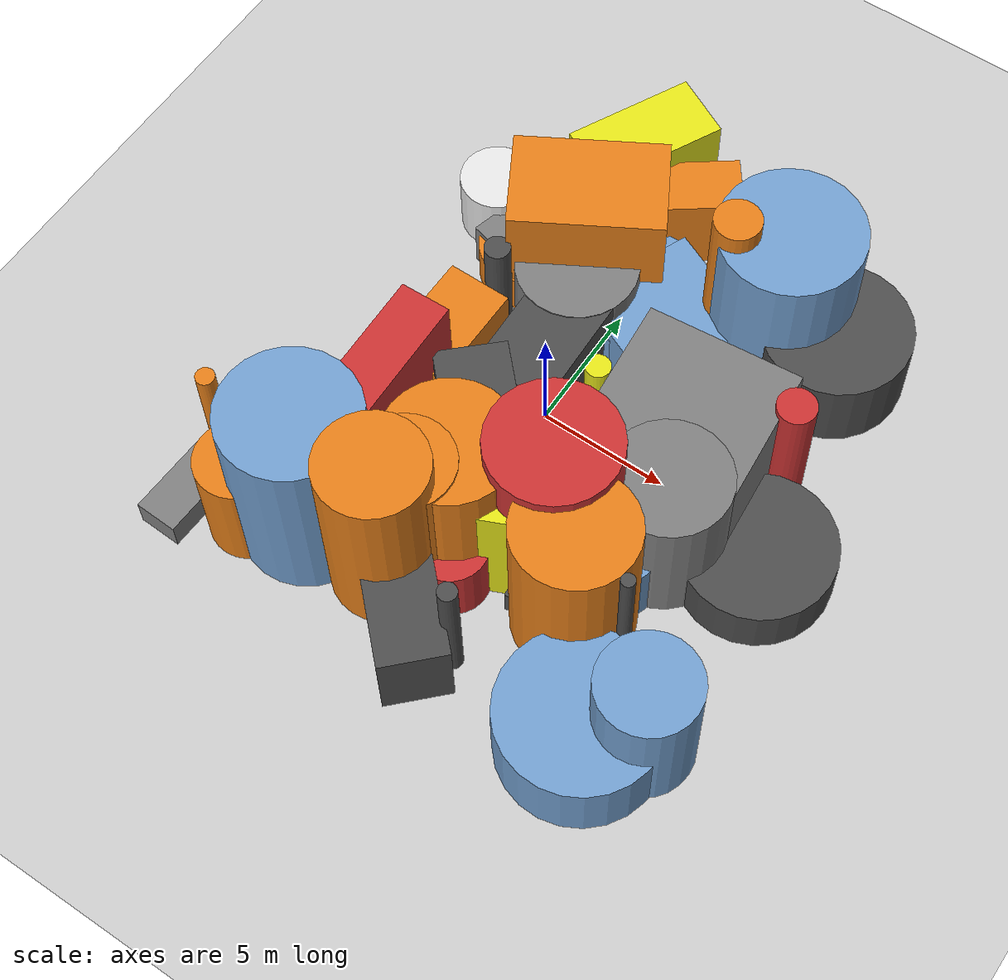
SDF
<?xml version='1.0'?>
<sdf version='1.6'>
  <world name='default'>
    <!-- Sun light -->
    <light name='sun' type='directional'>
      <cast_shadows>1</cast_shadows>
      <pose>0 0 10 0 0 0</pose>
      <diffuse>0.8 0.8 0.8 1</diffuse>
      <specular>0.2 0.2 0.2 1</specular>
      <attenuation>
        <range>1000</range>
        <constant>0.9</constant>
        <linear>0.01</linear>
        <quadratic>0.001</quadratic>
      </attenuation>
      <direction>-0.5 0.1 -0.9</direction>
    </light>

    <!-- Ground plane -->
    <model name='ground_plane'>
      <static>1</static>
      <link name='link'>
        <collision name='collision'>
          <geometry>
            <plane>
              <normal>0 0 1</normal>
              <size>100 100</size>
            </plane>
          </geometry>
          <surface>
            <contact>
              <collide_bitmask>65535</collide_bitmask>
              <ode/>
            </contact>
            <friction>
              <ode>
                <mu>100</mu>
                <mu2>50</mu2>
              </ode>
              <torsional><ode/></torsional>
            </friction>
            <bounce/>
          </surface>
          <max_contacts>10</max_contacts>
        </collision>
        <visual name='visual'>
          <cast_shadows>0</cast_shadows>
          <geometry>
            <plane>
              <normal>0 0 1</normal>
              <size>100 100</size>
            </plane>
          </geometry>
          <material>
            <script>
              <uri>file://media/materials/scripts/gazebo.material</uri>
              <n>Gazebo/Grey</n>
            </script>
          </material>
        </visual>
      </link>
    </model>

    <!-- Environment -->
    <magnetic_field>6e-06 2.3e-05 -4.2e-05</magnetic_field>
    <atmosphere type='adiabatic'/>
    <physics name='default_physics' default='0' type='ode'>
      <gravity>0 0 -9.8</gravity>
      <max_step_size>0.004</max_step_size>
      <real_time_factor>1</real_time_factor>
      <real_time_update_rate>250</real_time_update_rate>
    </physics>
    <scene>
      <ambient>0.4 0.4 0.4 1</ambient>
      <background>0.7 0.7 0.7 1</background>
      <shadows>1</shadows>
    </scene>
    <wind/>
    <spherical_coordinates>
      <surface_model>EARTH_WGS84</surface_model>
      <latitude_deg>0</latitude_deg>
      <longitude_deg>0</longitude_deg>
      <elevation>0</elevation>
      <heading_deg>0</heading_deg>
    </spherical_coordinates>

    <!-- ============ OBSTACLES (50) ============ -->
    <model name='obs_00'>
      <static>1</static>
      <link name='link'>
        <visual name='visual'>
          <geometry>
            <cylinder>
              <radius>0.3540</radius>
              <length>5.4887</length>
            </cylinder>
          </geometry>
          <material>
            <script>
              <n>Gazebo/DarkGrey</n>
              <uri>file://media/materials/scripts/gazebo.material</uri>
            </script>
            <ambient>0.3 0.3 0.3 1</ambient>
          </material>
        </visual>
        <collision name='collision'>
          <geometry>
            <cylinder>
              <radius>0.3540</radius>
              <length>5.4887</length>
            </cylinder>
          </geometry>
          <max_contacts>10</max_contacts>
          <surface>
            <contact><ode/></contact>
            <bounce/>
            <friction>
              <ode><mu>1</mu><mu2>1</mu2></ode>
              <torsional><ode/></torsional>
            </friction>
          </surface>
        </collision>
      </link>
      <pose>2.7887 -9.6706 2.7443 0 0 1.1078</pose>
    </model>

    <model name='obs_01'>
      <static>1</static>
      <link name='link'>
        <visual name='visual'>
          <geometry>
            <box>
              <size>3.9182 3.7257 1.1322</size>
            </box>
          </geometry>
          <material>
            <script>
              <n>Gazebo/DarkGrey</n>
              <uri>file://media/materials/scripts/gazebo.material</uri>
            </script>
            <ambient>0.3 0.3 0.3 1</ambient>
          </material>
        </visual>
        <collision name='collision'>
          <geometry>
            <box>
              <size>3.9182 3.7257 1.1322</size>
            </box>
          </geometry>
          <max_contacts>10</max_contacts>
          <surface>
            <contact><ode/></contact>
            <bounce/>
            <friction>
              <ode><mu>1</mu><mu2>1</mu2></ode>
              <torsional><ode/></torsional>
            </friction>
          </surface>
        </collision>
      </link>
      <pose>4.8389 -5.0150 0.5661 0 0 0.1383</pose>
    </model>

    <model name='obs_02'>
      <static>1</static>
      <link name='link'>
        <visual name='visual'>
          <geometry>
            <cylinder>
              <radius>1.7927</radius>
              <length>6.7865</length>
            </cylinder>
          </geometry>
          <material>
            <script>
              <n>Gazebo/Orange</n>
              <uri>file://media/materials/scripts/gazebo.material</uri>
            </script>
            <ambient>0.9 0.5 0.1 1</ambient>
          </material>
        </visual>
        <collision name='collision'>
          <geometry>
            <cylinder>
              <radius>1.7927</radius>
              <length>6.7865</length>
            </cylinder>
          </geometry>
          <max_contacts>10</max_contacts>
          <surface>
            <contact><ode/></contact>
            <bounce/>
            <friction>
              <ode><mu>1</mu><mu2>1</mu2></ode>
              <torsional><ode/></torsional>
            </friction>
          </surface>
        </collision>
      </link>
      <pose>-0.6686 -7.1544 3.3933 0 0 1.7336</pose>
    </model>

    <model name='obs_03'>
      <static>1</static>
      <link name='link'>
        <visual name='visual'>
          <geometry>
            <cylinder>
              <radius>1.7212</radius>
              <length>2.8461</length>
            </cylinder>
          </geometry>
          <material>
            <script>
              <n>Gazebo/Blue</n>
              <uri>file://media/materials/scripts/gazebo.material</uri>
            </script>
            <ambient>0.447 0.624 0.812 1</ambient>
          </material>
        </visual>
        <collision name='collision'>
          <geometry>
            <cylinder>
              <radius>1.7212</radius>
              <length>2.8461</length>
            </cylinder>
          </geometry>
          <max_contacts>10</max_contacts>
          <surface>
            <contact><ode/></contact>
            <bounce/>
            <friction>
              <ode><mu>1</mu><mu2>1</mu2></ode>
              <torsional><ode/></torsional>
            </friction>
          </surface>
        </collision>
      </link>
      <pose>4.5544 -1.6349 1.4231 0 0 0.9054</pose>
    </model>

    <model name='obs_04'>
      <static>1</static>
      <link name='link'>
        <visual name='visual'>
          <geometry>
            <box>
              <size>5.7004 3.7480 5.5297</size>
            </box>
          </geometry>
          <material>
            <script>
              <n>Gazebo/Orange</n>
              <uri>file://media/materials/scripts/gazebo.material</uri>
            </script>
            <ambient>0.9 0.5 0.1 1</ambient>
          </material>
        </visual>
        <collision name='collision'>
          <geometry>
            <box>
              <size>5.7004 3.7480 5.5297</size>
            </box>
          </geometry>
          <max_contacts>10</max_contacts>
          <surface>
            <contact><ode/></contact>
            <bounce/>
            <friction>
              <ode><mu>1</mu><mu2>1</mu2></ode>
              <torsional><ode/></torsional>
            </friction>
          </surface>
        </collision>
      </link>
      <pose>-2.3190 6.1902 2.7649 0 0 0.5239</pose>
    </model>

    <model name='obs_05'>
      <static>1</static>
      <link name='link'>
        <visual name='visual'>
          <geometry>
            <cylinder>
              <radius>1.9822</radius>
              <length>7.8254</length>
            </cylinder>
          </geometry>
          <material>
            <script>
              <n>Gazebo/Orange</n>
              <uri>file://media/materials/scripts/gazebo.material</uri>
            </script>
            <ambient>0.9 0.5 0.1 1</ambient>
          </material>
        </visual>
        <collision name='collision'>
          <geometry>
            <cylinder>
              <radius>1.9822</radius>
              <length>7.8254</length>
            </cylinder>
          </geometry>
          <max_contacts>10</max_contacts>
          <surface>
            <contact><ode/></contact>
            <bounce/>
            <friction>
              <ode><mu>1</mu><mu2>1</mu2></ode>
              <torsional><ode/></torsional>
            </friction>
          </surface>
        </collision>
      </link>
      <pose>-1.0851 -8.2420 3.9127 0 0 1.0406</pose>
    </model>

    <model name='obs_06'>
      <static>1</static>
      <link name='link'>
        <visual name='visual'>
          <geometry>
            <box>
              <size>3.6816 1.6401 3.2916</size>
            </box>
          </geometry>
          <material>
            <script>
              <n>Gazebo/Yellow</n>
              <uri>file://media/materials/scripts/gazebo.material</uri>
            </script>
            <ambient>0.9 0.9 0.1 1</ambient>
          </material>
        </visual>
        <collision name='collision'>
          <geometry>
            <box>
              <size>3.6816 1.6401 3.2916</size>
            </box>
          </geometry>
          <max_contacts>10</max_contacts>
          <surface>
            <contact><ode/></contact>
            <bounce/>
            <friction>
              <ode><mu>1</mu><mu2>1</mu2></ode>
              <torsional><ode/></torsional>
            </friction>
          </surface>
        </collision>
      </link>
      <pose>-2.7392 -7.3643 1.6458 0 0 1.1138</pose>
    </model>

    <model name='obs_07'>
      <static>1</static>
      <link name='link'>
        <visual name='visual'>
          <geometry>
            <box>
              <size>2.4989 4.1508 2.3941</size>
            </box>
          </geometry>
          <material>
            <script>
              <n>Gazebo/Orange</n>
              <uri>file://media/materials/scripts/gazebo.material</uri>
            </script>
            <ambient>0.9 0.5 0.1 1</ambient>
          </material>
        </visual>
        <collision name='collision'>
          <geometry>
            <box>
              <size>2.4989 4.1508 2.3941</size>
            </box>
          </geometry>
          <max_contacts>10</max_contacts>
          <surface>
            <contact><ode/></contact>
            <bounce/>
            <friction>
              <ode><mu>1</mu><mu2>1</mu2></ode>
              <torsional><ode/></torsional>
            </friction>
          </surface>
        </collision>
      </link>
      <pose>-4.3663 0.1142 1.1971 0 0 3.1347</pose>
    </model>

    <model name='obs_08'>
      <static>1</static>
      <link name='link'>
        <visual name='visual'>
          <geometry>
            <box>
              <size>4.7812 2.2783 5.3743</size>
            </box>
          </geometry>
          <material>
            <script>
              <n>Gazebo/Yellow</n>
              <uri>file://media/materials/scripts/gazebo.material</uri>
            </script>
            <ambient>0.9 0.9 0.1 1</ambient>
          </material>
        </visual>
        <collision name='collision'>
          <geometry>
            <box>
              <size>4.7812 2.2783 5.3743</size>
            </box>
          </geometry>
          <max_contacts>10</max_contacts>
          <surface>
            <contact><ode/></contact>
            <bounce/>
            <friction>
              <ode><mu>1</mu><mu2>1</mu2></ode>
              <torsional><ode/></torsional>
            </friction>
          </surface>
        </collision>
      </link>
      <pose>2.4604 -5.5674 2.6871 0 0 0.4211</pose>
    </model>

    <model name='obs_09'>
      <static>1</static>
      <link name='link'>
        <visual name='visual'>
          <geometry>
            <cylinder>
              <radius>0.4641</radius>
              <length>5.2236</length>
            </cylinder>
          </geometry>
          <material>
            <script>
              <n>Gazebo/Yellow</n>
              <uri>file://media/materials/scripts/gazebo.material</uri>
            </script>
            <ambient>0.9 0.9 0.1 1</ambient>
          </material>
        </visual>
        <collision name='collision'>
          <geometry>
            <cylinder>
              <radius>0.4641</radius>
              <length>5.2236</length>
            </cylinder>
          </geometry>
          <max_contacts>10</max_contacts>
          <surface>
            <contact><ode/></contact>
            <bounce/>
            <friction>
              <ode><mu>1</mu><mu2>1</mu2></ode>
              <torsional><ode/></torsional>
            </friction>
          </surface>
        </collision>
      </link>
      <pose>2.0573 0.1649 2.6118 0 0 0.2240</pose>
    </model>

    <model name='obs_10'>
      <static>1</static>
      <link name='link'>
        <visual name='visual'>
          <geometry>
            <box>
              <size>4.4860 2.4991 3.2883</size>
            </box>
          </geometry>
          <material>
            <script>
              <n>Gazebo/DarkGrey</n>
              <uri>file://media/materials/scripts/gazebo.material</uri>
            </script>
            <ambient>0.3 0.3 0.3 1</ambient>
          </material>
        </visual>
        <collision name='collision'>
          <geometry>
            <box>
              <size>4.4860 2.4991 3.2883</size>
            </box>
          </geometry>
          <max_contacts>10</max_contacts>
          <surface>
            <contact><ode/></contact>
            <bounce/>
            <friction>
              <ode><mu>1</mu><mu2>1</mu2></ode>
              <torsional><ode/></torsional>
            </friction>
          </surface>
        </collision>
      </link>
      <pose>1.0695 -9.9545 1.6441 0 0 2.3653</pose>
    </model>

    <model name='obs_11'>
      <static>1</static>
      <link name='link'>
        <visual name='visual'>
          <geometry>
            <cylinder>
              <radius>0.3629</radius>
              <length>3.7481</length>
            </cylinder>
          </geometry>
          <material>
            <script>
              <n>Gazebo/Orange</n>
              <uri>file://media/materials/scripts/gazebo.material</uri>
            </script>
            <ambient>0.9 0.5 0.1 1</ambient>
          </material>
        </visual>
        <collision name='collision'>
          <geometry>
            <cylinder>
              <radius>0.3629</radius>
              <length>3.7481</length>
            </cylinder>
          </geometry>
          <max_contacts>10</max_contacts>
          <surface>
            <contact><ode/></contact>
            <bounce/>
            <friction>
              <ode><mu>1</mu><mu2>1</mu2></ode>
              <torsional><ode/></torsional>
            </friction>
          </surface>
        </collision>
      </link>
      <pose>-9.4543 -7.0964 1.8740 0 0 1.3928</pose>
    </model>

    <model name='obs_12'>
      <static>1</static>
      <link name='link'>
        <visual name='visual'>
          <geometry>
            <cylinder>
              <radius>2.3911</radius>
              <length>6.6735</length>
            </cylinder>
          </geometry>
          <material>
            <script>
              <n>Gazebo/Orange</n>
              <uri>file://media/materials/scripts/gazebo.material</uri>
            </script>
            <ambient>0.9 0.5 0.1 1</ambient>
          </material>
        </visual>
        <collision name='collision'>
          <geometry>
            <cylinder>
              <radius>2.3911</radius>
              <length>6.6735</length>
            </cylinder>
          </geometry>
          <max_contacts>10</max_contacts>
          <surface>
            <contact><ode/></contact>
            <bounce/>
            <friction>
              <ode><mu>1</mu><mu2>1</mu2></ode>
              <torsional><ode/></torsional>
            </friction>
          </surface>
        </collision>
      </link>
      <pose>0.0623 -5.6734 3.3368 0 0 0.7607</pose>
    </model>

    <model name='obs_13'>
      <static>1</static>
      <link name='link'>
        <visual name='visual'>
          <geometry>
            <cylinder>
              <radius>2.9646</radius>
              <length>2.9721</length>
            </cylinder>
          </geometry>
          <material>
            <script>
              <n>Gazebo/Blue</n>
              <uri>file://media/materials/scripts/gazebo.material</uri>
            </script>
            <ambient>0.447 0.624 0.812 1</ambient>
          </material>
        </visual>
        <collision name='collision'>
          <geometry>
            <cylinder>
              <radius>2.9646</radius>
              <length>2.9721</length>
            </cylinder>
          </geometry>
          <max_contacts>10</max_contacts>
          <surface>
            <contact><ode/></contact>
            <bounce/>
            <friction>
              <ode><mu>1</mu><mu2>1</mu2></ode>
              <torsional><ode/></torsional>
            </friction>
          </surface>
        </collision>
      </link>
      <pose>8.0309 -9.7479 1.4861 0 0 1.9343</pose>
    </model>

    <model name='obs_14'>
      <static>1</static>
      <link name='link'>
        <visual name='visual'>
          <geometry>
            <box>
              <size>2.7049 4.7441 3.3498</size>
            </box>
          </geometry>
          <material>
            <script>
              <n>Gazebo/DarkGrey</n>
              <uri>file://media/materials/scripts/gazebo.material</uri>
            </script>
            <ambient>0.3 0.3 0.3 1</ambient>
          </material>
        </visual>
        <collision name='collision'>
          <geometry>
            <box>
              <size>2.7049 4.7441 3.3498</size>
            </box>
          </geometry>
          <max_contacts>10</max_contacts>
          <surface>
            <contact><ode/></contact>
            <bounce/>
            <friction>
              <ode><mu>1</mu><mu2>1</mu2></ode>
              <torsional><ode/></torsional>
            </friction>
          </surface>
        </collision>
      </link>
      <pose>-1.0744 -2.4482 1.6749 0 0 0.7641</pose>
    </model>

    <model name='obs_15'>
      <static>1</static>
      <link name='link'>
        <visual name='visual'>
          <geometry>
            <box>
              <size>5.0389 2.1750 2.0566</size>
            </box>
          </geometry>
          <material>
            <script>
              <n>Gazebo/Grey</n>
              <uri>file://media/materials/scripts/gazebo.material</uri>
            </script>
            <ambient>0.5 0.5 0.5 1</ambient>
          </material>
        </visual>
        <collision name='collision'>
          <geometry>
            <box>
              <size>5.0389 2.1750 2.0566</size>
            </box>
          </geometry>
          <max_contacts>10</max_contacts>
          <surface>
            <contact><ode/></contact>
            <bounce/>
            <friction>
              <ode><mu>1</mu><mu2>1</mu2></ode>
              <torsional><ode/></torsional>
            </friction>
          </surface>
        </collision>
      </link>
      <pose>-4.3060 6.3701 1.0283 0 0 1.3083</pose>
    </model>

    <model name='obs_16'>
      <static>1</static>
      <link name='link'>
        <visual name='visual'>
          <geometry>
            <box>
              <size>5.6321 5.8013 5.2602</size>
            </box>
          </geometry>
          <material>
            <script>
              <n>Gazebo/Grey</n>
              <uri>file://media/materials/scripts/gazebo.material</uri>
            </script>
            <ambient>0.5 0.5 0.5 1</ambient>
          </material>
        </visual>
        <collision name='collision'>
          <geometry>
            <box>
              <size>5.6321 5.8013 5.2602</size>
            </box>
          </geometry>
          <max_contacts>10</max_contacts>
          <surface>
            <contact><ode/></contact>
            <bounce/>
            <friction>
              <ode><mu>1</mu><mu2>1</mu2></ode>
              <torsional><ode/></torsional>
            </friction>
          </surface>
        </collision>
      </link>
      <pose>5.4313 0.5857 2.6301 0 0 1.6629</pose>
    </model>

    <model name='obs_17'>
      <static>1</static>
      <link name='link'>
        <visual name='visual'>
          <geometry>
            <cylinder>
              <radius>0.8767</radius>
              <length>7.2952</length>
            </cylinder>
          </geometry>
          <material>
            <script>
              <n>Gazebo/Orange</n>
              <uri>file://media/materials/scripts/gazebo.material</uri>
            </script>
            <ambient>0.9 0.5 0.1 1</ambient>
          </material>
        </visual>
        <collision name='collision'>
          <geometry>
            <cylinder>
              <radius>0.8767</radius>
              <length>7.2952</length>
            </cylinder>
          </geometry>
          <max_contacts>10</max_contacts>
          <surface>
            <contact><ode/></contact>
            <bounce/>
            <friction>
              <ode><mu>1</mu><mu2>1</mu2></ode>
              <torsional><ode/></torsional>
            </friction>
          </surface>
        </collision>
      </link>
      <pose>3.4509 6.6480 3.6476 0 0 1.0004</pose>
    </model>

    <model name='obs_18'>
      <static>1</static>
      <link name='link'>
        <visual name='visual'>
          <geometry>
            <cylinder>
              <radius>2.6869</radius>
              <length>6.5273</length>
            </cylinder>
          </geometry>
          <material>
            <script>
              <n>Gazebo/Blue</n>
              <uri>file://media/materials/scripts/gazebo.material</uri>
            </script>
            <ambient>0.447 0.624 0.812 1</ambient>
          </material>
        </visual>
        <collision name='collision'>
          <geometry>
            <cylinder>
              <radius>2.6869</radius>
              <length>6.5273</length>
            </cylinder>
          </geometry>
          <max_contacts>10</max_contacts>
          <surface>
            <contact><ode/></contact>
            <bounce/>
            <friction>
              <ode><mu>1</mu><mu2>1</mu2></ode>
              <torsional><ode/></torsional>
            </friction>
          </surface>
        </collision>
      </link>
      <pose>5.0335 7.7883 3.2637 0 0 0.8567</pose>
    </model>

    <model name='obs_19'>
      <static>1</static>
      <link name='link'>
        <visual name='visual'>
          <geometry>
            <cylinder>
              <radius>2.8034</radius>
              <length>2.0917</length>
            </cylinder>
          </geometry>
          <material>
            <script>
              <n>Gazebo/DarkGrey</n>
              <uri>file://media/materials/scripts/gazebo.material</uri>
            </script>
            <ambient>0.3 0.3 0.3 1</ambient>
          </material>
        </visual>
        <collision name='collision'>
          <geometry>
            <cylinder>
              <radius>2.8034</radius>
              <length>2.0917</length>
            </cylinder>
          </geometry>
          <max_contacts>10</max_contacts>
          <surface>
            <contact><ode/></contact>
            <bounce/>
            <friction>
              <ode><mu>1</mu><mu2>1</mu2></ode>
              <torsional><ode/></torsional>
            </friction>
          </surface>
        </collision>
      </link>
      <pose>9.5211 -1.0894 1.0459 0 0 2.1160</pose>
    </model>

    <model name='obs_20'>
      <static>1</static>
      <link name='link'>
        <visual name='visual'>
          <geometry>
            <cylinder>
              <radius>1.1372</radius>
              <length>1.5217</length>
            </cylinder>
          </geometry>
          <material>
            <script>
              <n>Gazebo/Grey</n>
              <uri>file://media/materials/scripts/gazebo.material</uri>
            </script>
            <ambient>0.5 0.5 0.5 1</ambient>
          </material>
        </visual>
        <collision name='collision'>
          <geometry>
            <cylinder>
              <radius>1.1372</radius>
              <length>1.5217</length>
            </cylinder>
          </geometry>
          <max_contacts>10</max_contacts>
          <surface>
            <contact><ode/></contact>
            <bounce/>
            <friction>
              <ode><mu>1</mu><mu2>1</mu2></ode>
              <torsional><ode/></torsional>
            </friction>
          </surface>
        </collision>
      </link>
      <pose>3.7013 -0.2180 0.7609 0 0 0.8026</pose>
    </model>

    <model name='obs_21'>
      <static>1</static>
      <link name='link'>
        <visual name='visual'>
          <geometry>
            <box>
              <size>2.1078 4.3771 3.4323</size>
            </box>
          </geometry>
          <material>
            <script>
              <n>Gazebo/Orange</n>
              <uri>file://media/materials/scripts/gazebo.material</uri>
            </script>
            <ambient>0.9 0.5 0.1 1</ambient>
          </material>
        </visual>
        <collision name='collision'>
          <geometry>
            <box>
              <size>2.1078 4.3771 3.4323</size>
            </box>
          </geometry>
          <max_contacts>10</max_contacts>
          <surface>
            <contact><ode/></contact>
            <bounce/>
            <friction>
              <ode><mu>1</mu><mu2>1</mu2></ode>
              <torsional><ode/></torsional>
            </friction>
          </surface>
        </collision>
      </link>
      <pose>-0.1962 9.2926 1.7162 0 0 2.2089</pose>
    </model>

    <model name='obs_22'>
      <static>1</static>
      <link name='link'>
        <visual name='visual'>
          <geometry>
            <cylinder>
              <radius>2.7689</radius>
              <length>3.1189</length>
            </cylinder>
          </geometry>
          <material>
            <script>
              <n>Gazebo/DarkGrey</n>
              <uri>file://media/materials/scripts/gazebo.material</uri>
            </script>
            <ambient>0.3 0.3 0.3 1</ambient>
          </material>
        </visual>
        <collision name='collision'>
          <geometry>
            <cylinder>
              <radius>2.7689</radius>
              <length>3.1189</length>
            </cylinder>
          </geometry>
          <max_contacts>10</max_contacts>
          <surface>
            <contact><ode/></contact>
            <bounce/>
            <friction>
              <ode><mu>1</mu><mu2>1</mu2></ode>
              <torsional><ode/></torsional>
            </friction>
          </surface>
        </collision>
      </link>
      <pose>7.5714 7.3351 1.5594 0 0 1.0179</pose>
    </model>

    <model name='obs_23'>
      <static>1</static>
      <link name='link'>
        <visual name='visual'>
          <geometry>
            <box>
              <size>1.9427 5.2009 5.0083</size>
            </box>
          </geometry>
          <material>
            <script>
              <n>Gazebo/Red</n>
              <uri>file://media/materials/scripts/gazebo.material</uri>
            </script>
            <ambient>0.8 0.2 0.2 1</ambient>
          </material>
        </visual>
        <collision name='collision'>
          <geometry>
            <box>
              <size>1.9427 5.2009 5.0083</size>
            </box>
          </geometry>
          <max_contacts>10</max_contacts>
          <surface>
            <contact><ode/></contact>
            <bounce/>
            <friction>
              <ode><mu>1</mu><mu2>1</mu2></ode>
              <torsional><ode/></torsional>
            </friction>
          </surface>
        </collision>
      </link>
      <pose>-4.4466 -3.3550 2.5042 0 0 0.0247</pose>
    </model>

    <model name='obs_24'>
      <static>1</static>
      <link name='link'>
        <visual name='visual'>
          <geometry>
            <cylinder>
              <radius>0.4920</radius>
              <length>4.1708</length>
            </cylinder>
          </geometry>
          <material>
            <script>
              <n>Gazebo/DarkGrey</n>
              <uri>file://media/materials/scripts/gazebo.material</uri>
            </script>
            <ambient>0.3 0.3 0.3 1</ambient>
          </material>
        </visual>
        <collision name='collision'>
          <geometry>
            <cylinder>
              <radius>0.4920</radius>
              <length>4.1708</length>
            </cylinder>
          </geometry>
          <max_contacts>10</max_contacts>
          <surface>
            <contact><ode/></contact>
            <bounce/>
            <friction>
              <ode><mu>1</mu><mu2>1</mu2></ode>
              <torsional><ode/></torsional>
            </friction>
          </surface>
        </collision>
      </link>
      <pose>-3.9751 2.7993 2.0854 0 0 0.2682</pose>
    </model>

    <model name='obs_25'>
      <static>1</static>
      <link name='link'>
        <visual name='visual'>
          <geometry>
            <box>
              <size>2.6253 3.6205 5.9984</size>
            </box>
          </geometry>
          <material>
            <script>
              <n>Gazebo/Blue</n>
              <uri>file://media/materials/scripts/gazebo.material</uri>
            </script>
            <ambient>0.447 0.624 0.812 1</ambient>
          </material>
        </visual>
        <collision name='collision'>
          <geometry>
            <box>
              <size>2.6253 3.6205 5.9984</size>
            </box>
          </geometry>
          <max_contacts>10</max_contacts>
          <surface>
            <contact><ode/></contact>
            <bounce/>
            <friction>
              <ode><mu>1</mu><mu2>1</mu2></ode>
              <torsional><ode/></torsional>
            </friction>
          </surface>
        </collision>
      </link>
      <pose>-1.6952 -7.0419 2.9992 0 0 2.0581</pose>
    </model>

    <model name='obs_26'>
      <static>1</static>
      <link name='link'>
        <visual name='visual'>
          <geometry>
            <cylinder>
              <radius>2.2147</radius>
              <length>5.5418</length>
            </cylinder>
          </geometry>
          <material>
            <script>
              <n>Gazebo/Grey</n>
              <uri>file://media/materials/scripts/gazebo.material</uri>
            </script>
            <ambient>0.5 0.5 0.5 1</ambient>
          </material>
        </visual>
        <collision name='collision'>
          <geometry>
            <cylinder>
              <radius>2.2147</radius>
              <length>5.5418</length>
            </cylinder>
          </geometry>
          <max_contacts>10</max_contacts>
          <surface>
            <contact><ode/></contact>
            <bounce/>
            <friction>
              <ode><mu>1</mu><mu2>1</mu2></ode>
              <torsional><ode/></torsional>
            </friction>
          </surface>
        </collision>
      </link>
      <pose>6.4515 -2.2392 2.7709 0 0 3.0035</pose>
    </model>

    <model name='obs_27'>
      <static>1</static>
      <link name='link'>
        <visual name='visual'>
          <geometry>
            <box>
              <size>2.6228 1.1420 2.0430</size>
            </box>
          </geometry>
          <material>
            <script>
              <n>Gazebo/Blue</n>
              <uri>file://media/materials/scripts/gazebo.material</uri>
            </script>
            <ambient>0.447 0.624 0.812 1</ambient>
          </material>
        </visual>
        <collision name='collision'>
          <geometry>
            <box>
              <size>2.6228 1.1420 2.0430</size>
            </box>
          </geometry>
          <max_contacts>10</max_contacts>
          <surface>
            <contact><ode/></contact>
            <bounce/>
            <friction>
              <ode><mu>1</mu><mu2>1</mu2></ode>
              <torsional><ode/></torsional>
            </friction>
          </surface>
        </collision>
      </link>
      <pose>-3.6374 8.3070 1.0215 0 0 2.6423</pose>
    </model>

    <model name='obs_28'>
      <static>1</static>
      <link name='link'>
        <visual name='visual'>
          <geometry>
            <cylinder>
              <radius>2.2970</radius>
              <length>2.9661</length>
            </cylinder>
          </geometry>
          <material>
            <script>
              <n>Gazebo/Grey</n>
              <uri>file://media/materials/scripts/gazebo.material</uri>
            </script>
            <ambient>0.5 0.5 0.5 1</ambient>
          </material>
        </visual>
        <collision name='collision'>
          <geometry>
            <cylinder>
              <radius>2.2970</radius>
              <length>2.9661</length>
            </cylinder>
          </geometry>
          <max_contacts>10</max_contacts>
          <surface>
            <contact><ode/></contact>
            <bounce/>
            <friction>
              <ode><mu>1</mu><mu2>1</mu2></ode>
              <torsional><ode/></torsional>
            </friction>
          </surface>
        </collision>
      </link>
      <pose>-1.6538 4.4893 1.4831 0 0 2.0147</pose>
    </model>

    <model name='obs_29'>
      <static>1</static>
      <link name='link'>
        <visual name='visual'>
          <geometry>
            <cylinder>
              <radius>0.2168</radius>
              <length>3.4740</length>
            </cylinder>
          </geometry>
          <material>
            <script>
              <n>Gazebo/Yellow</n>
              <uri>file://media/materials/scripts/gazebo.material</uri>
            </script>
            <ambient>0.9 0.9 0.1 1</ambient>
          </material>
        </visual>
        <collision name='collision'>
          <geometry>
            <cylinder>
              <radius>0.2168</radius>
              <length>3.4740</length>
            </cylinder>
          </geometry>
          <max_contacts>10</max_contacts>
          <surface>
            <contact><ode/></contact>
            <bounce/>
            <friction>
              <ode><mu>1</mu><mu2>1</mu2></ode>
              <torsional><ode/></torsional>
            </friction>
          </surface>
        </collision>
      </link>
      <pose>-2.6136 -3.7004 1.7370 0 0 1.5038</pose>
    </model>

    <model name='obs_30'>
      <static>1</static>
      <link name='link'>
        <visual name='visual'>
          <geometry>
            <box>
              <size>3.4463 0.5223 1.4427</size>
            </box>
          </geometry>
          <material>
            <script>
              <n>Gazebo/Yellow</n>
              <uri>file://media/materials/scripts/gazebo.material</uri>
            </script>
            <ambient>0.9 0.9 0.1 1</ambient>
          </material>
        </visual>
        <collision name='collision'>
          <geometry>
            <box>
              <size>3.4463 0.5223 1.4427</size>
            </box>
          </geometry>
          <max_contacts>10</max_contacts>
          <surface>
            <contact><ode/></contact>
            <bounce/>
            <friction>
              <ode><mu>1</mu><mu2>1</mu2></ode>
              <torsional><ode/></torsional>
            </friction>
          </surface>
        </collision>
      </link>
      <pose>-1.4562 0.2856 0.7214 0 0 0.5201</pose>
    </model>

    <model name='obs_31'>
      <static>1</static>
      <link name='link'>
        <visual name='visual'>
          <geometry>
            <cylinder>
              <radius>1.4159</radius>
              <length>2.8582</length>
            </cylinder>
          </geometry>
          <material>
            <script>
              <n>Gazebo/Blue</n>
              <uri>file://media/materials/scripts/gazebo.material</uri>
            </script>
            <ambient>0.447 0.624 0.812 1</ambient>
          </material>
        </visual>
        <collision name='collision'>
          <geometry>
            <cylinder>
              <radius>1.4159</radius>
              <length>2.8582</length>
            </cylinder>
          </geometry>
          <max_contacts>10</max_contacts>
          <surface>
            <contact><ode/></contact>
            <bounce/>
            <friction>
              <ode><mu>1</mu><mu2>1</mu2></ode>
              <torsional><ode/></torsional>
            </friction>
          </surface>
        </collision>
      </link>
      <pose>5.7793 -4.1401 1.4291 0 0 0.0642</pose>
    </model>

    <model name='obs_32'>
      <static>1</static>
      <link name='link'>
        <visual name='visual'>
          <geometry>
            <box>
              <size>1.6366 3.4608 1.1381</size>
            </box>
          </geometry>
          <material>
            <script>
              <n>Gazebo/Grey</n>
              <uri>file://media/materials/scripts/gazebo.material</uri>
            </script>
            <ambient>0.5 0.5 0.5 1</ambient>
          </material>
        </visual>
        <collision name='collision'>
          <geometry>
            <box>
              <size>1.6366 3.4608 1.1381</size>
            </box>
          </geometry>
          <max_contacts>10</max_contacts>
          <surface>
            <contact><ode/></contact>
            <bounce/>
            <friction>
              <ode><mu>1</mu><mu2>1</mu2></ode>
              <torsional><ode/></torsional>
            </friction>
          </surface>
        </collision>
      </link>
      <pose>-8.5111 -9.7928 0.5691 0 0 3.1018</pose>
    </model>

    <model name='obs_33'>
      <static>1</static>
      <link name='link'>
        <visual name='visual'>
          <geometry>
            <cylinder>
              <radius>2.5145</radius>
              <length>7.7835</length>
            </cylinder>
          </geometry>
          <material>
            <script>
              <n>Gazebo/Blue</n>
              <uri>file://media/materials/scripts/gazebo.material</uri>
            </script>
            <ambient>0.447 0.624 0.812 1</ambient>
          </material>
        </visual>
        <collision name='collision'>
          <geometry>
            <cylinder>
              <radius>2.5145</radius>
              <length>7.7835</length>
            </cylinder>
          </geometry>
          <max_contacts>10</max_contacts>
          <surface>
            <contact><ode/></contact>
            <bounce/>
            <friction>
              <ode><mu>1</mu><mu2>1</mu2></ode>
              <torsional><ode/></torsional>
            </friction>
          </surface>
        </collision>
      </link>
      <pose>-4.4052 -8.2165 3.8918 0 0 2.8179</pose>
    </model>

    <model name='obs_34'>
      <static>1</static>
      <link name='link'>
        <visual name='visual'>
          <geometry>
            <cylinder>
              <radius>0.3012</radius>
              <length>1.8347</length>
            </cylinder>
          </geometry>
          <material>
            <script>
              <n>Gazebo/Orange</n>
              <uri>file://media/materials/scripts/gazebo.material</uri>
            </script>
            <ambient>0.9 0.5 0.1 1</ambient>
          </material>
        </visual>
        <collision name='collision'>
          <geometry>
            <cylinder>
              <radius>0.3012</radius>
              <length>1.8347</length>
            </cylinder>
          </geometry>
          <max_contacts>10</max_contacts>
          <surface>
            <contact><ode/></contact>
            <bounce/>
            <friction>
              <ode><mu>1</mu><mu2>1</mu2></ode>
              <torsional><ode/></torsional>
            </friction>
          </surface>
        </collision>
      </link>
      <pose>9.6667 -7.1302 0.9174 0 0 1.3590</pose>
    </model>

    <model name='obs_35'>
      <static>1</static>
      <link name='link'>
        <visual name='visual'>
          <geometry>
            <cylinder>
              <radius>1.7676</radius>
              <length>1.8347</length>
            </cylinder>
          </geometry>
          <material>
            <script>
              <n>Gazebo/Orange</n>
              <uri>file://media/materials/scripts/gazebo.material</uri>
            </script>
            <ambient>0.9 0.5 0.1 1</ambient>
          </material>
        </visual>
        <collision name='collision'>
          <geometry>
            <cylinder>
              <radius>1.7676</radius>
              <length>1.8347</length>
            </cylinder>
          </geometry>
          <max_contacts>10</max_contacts>
          <surface>
            <contact><ode/></contact>
            <bounce/>
            <friction>
              <ode><mu>1</mu><mu2>1</mu2></ode>
              <torsional><ode/></torsional>
            </friction>
          </surface>
        </collision>
      </link>
      <pose>-4.1639 4.8564 0.9174 0 0 2.5675</pose>
    </model>

    <model name='obs_36'>
      <static>1</static>
      <link name='link'>
        <visual name='visual'>
          <geometry>
            <cylinder>
              <radius>0.7180</radius>
              <length>5.5320</length>
            </cylinder>
          </geometry>
          <material>
            <script>
              <n>Gazebo/Red</n>
              <uri>file://media/materials/scripts/gazebo.material</uri>
            </script>
            <ambient>0.8 0.2 0.2 1</ambient>
          </material>
        </visual>
        <collision name='collision'>
          <geometry>
            <cylinder>
              <radius>0.7180</radius>
              <length>5.5320</length>
            </cylinder>
          </geometry>
          <max_contacts>10</max_contacts>
          <surface>
            <contact><ode/></contact>
            <bounce/>
            <friction>
              <ode><mu>1</mu><mu2>1</mu2></ode>
              <torsional><ode/></torsional>
            </friction>
          </surface>
        </collision>
      </link>
      <pose>8.5203 2.4425 2.7660 0 0 1.1242</pose>
    </model>

    <model name='obs_37'>
      <static>1</static>
      <link name='link'>
        <visual name='visual'>
          <geometry>
            <cylinder>
              <radius>1.4112</radius>
              <length>2.5500</length>
            </cylinder>
          </geometry>
          <material>
            <script>
              <n>Gazebo/White</n>
              <uri>file://media/materials/scripts/gazebo.material</uri>
            </script>
            <ambient>0.9 0.9 0.9 1</ambient>
          </material>
        </visual>
        <collision name='collision'>
          <geometry>
            <cylinder>
              <radius>1.4112</radius>
              <length>2.5500</length>
            </cylinder>
          </geometry>
          <max_contacts>10</max_contacts>
          <surface>
            <contact><ode/></contact>
            <bounce/>
            <friction>
              <ode><mu>1</mu><mu2>1</mu2></ode>
              <torsional><ode/></torsional>
            </friction>
          </surface>
        </collision>
      </link>
      <pose>-6.4436 6.3064 1.2750 0 0 2.5319</pose>
    </model>

    <model name='obs_38'>
      <static>1</static>
      <link name='link'>
        <visual name='visual'>
          <geometry>
            <box>
              <size>4.9962 2.5244 4.3936</size>
            </box>
          </geometry>
          <material>
            <script>
              <n>Gazebo/Yellow</n>
              <uri>file://media/materials/scripts/gazebo.material</uri>
            </script>
            <ambient>0.9 0.9 0.1 1</ambient>
          </material>
        </visual>
        <collision name='collision'>
          <geometry>
            <box>
              <size>4.9962 2.5244 4.3936</size>
            </box>
          </geometry>
          <max_contacts>10</max_contacts>
          <surface>
            <contact><ode/></contact>
            <bounce/>
            <friction>
              <ode><mu>1</mu><mu2>1</mu2></ode>
              <torsional><ode/></torsional>
            </friction>
          </surface>
        </collision>
      </link>
      <pose>-2.3220 9.9605 2.1968 0 0 1.1047</pose>
    </model>

    <model name='obs_39'>
      <static>1</static>
      <link name='link'>
        <visual name='visual'>
          <geometry>
            <cylinder>
              <radius>0.2542</radius>
              <length>6.8356</length>
            </cylinder>
          </geometry>
          <material>
            <script>
              <n>Gazebo/DarkGrey</n>
              <uri>file://media/materials/scripts/gazebo.material</uri>
            </script>
            <ambient>0.3 0.3 0.3 1</ambient>
          </material>
        </visual>
        <collision name='collision'>
          <geometry>
            <cylinder>
              <radius>0.2542</radius>
              <length>6.8356</length>
            </cylinder>
          </geometry>
          <max_contacts>10</max_contacts>
          <surface>
            <contact><ode/></contact>
            <bounce/>
            <friction>
              <ode><mu>1</mu><mu2>1</mu2></ode>
              <torsional><ode/></torsional>
            </friction>
          </surface>
        </collision>
      </link>
      <pose>7.6440 -6.6439 3.4178 0 0 2.7407</pose>
    </model>

    <model name='obs_40'>
      <static>1</static>
      <link name='link'>
        <visual name='visual'>
          <geometry>
            <box>
              <size>4.6291 4.5891 2.1716</size>
            </box>
          </geometry>
          <material>
            <script>
              <n>Gazebo/Blue</n>
              <uri>file://media/materials/scripts/gazebo.material</uri>
            </script>
            <ambient>0.447 0.624 0.812 1</ambient>
          </material>
        </visual>
        <collision name='collision'>
          <geometry>
            <box>
              <size>4.6291 4.5891 2.1716</size>
            </box>
          </geometry>
          <max_contacts>10</max_contacts>
          <surface>
            <contact><ode/></contact>
            <bounce/>
            <friction>
              <ode><mu>1</mu><mu2>1</mu2></ode>
              <torsional><ode/></torsional>
            </friction>
          </surface>
        </collision>
      </link>
      <pose>1.8434 5.1142 1.0858 0 0 1.1518</pose>
    </model>

    <model name='obs_41'>
      <static>1</static>
      <link name='link'>
        <visual name='visual'>
          <geometry>
            <cylinder>
              <radius>1.8277</radius>
              <length>5.4293</length>
            </cylinder>
          </geometry>
          <material>
            <script>
              <n>Gazebo/Blue</n>
              <uri>file://media/materials/scripts/gazebo.material</uri>
            </script>
            <ambient>0.447 0.624 0.812 1</ambient>
          </material>
        </visual>
        <collision name='collision'>
          <geometry>
            <cylinder>
              <radius>1.8277</radius>
              <length>5.4293</length>
            </cylinder>
          </geometry>
          <max_contacts>10</max_contacts>
          <surface>
            <contact><ode/></contact>
            <bounce/>
            <friction>
              <ode><mu>1</mu><mu2>1</mu2></ode>
              <torsional><ode/></torsional>
            </friction>
          </surface>
        </collision>
      </link>
      <pose>9.8067 -8.6606 2.7147 0 0 2.0967</pose>
    </model>

    <model name='obs_42'>
      <static>1</static>
      <link name='link'>
        <visual name='visual'>
          <geometry>
            <box>
              <size>0.9357 1.3749 2.0983</size>
            </box>
          </geometry>
          <material>
            <script>
              <n>Gazebo/Blue</n>
              <uri>file://media/materials/scripts/gazebo.material</uri>
            </script>
            <ambient>0.447 0.624 0.812 1</ambient>
          </material>
        </visual>
        <collision name='collision'>
          <geometry>
            <box>
              <size>0.9357 1.3749 2.0983</size>
            </box>
          </geometry>
          <max_contacts>10</max_contacts>
          <surface>
            <contact><ode/></contact>
            <bounce/>
            <friction>
              <ode><mu>1</mu><mu2>1</mu2></ode>
              <torsional><ode/></torsional>
            </friction>
          </surface>
        </collision>
      </link>
      <pose>1.9937 -3.2400 1.0491 0 0 0.4227</pose>
    </model>

    <model name='obs_43'>
      <static>1</static>
      <link name='link'>
        <visual name='visual'>
          <geometry>
            <cylinder>
              <radius>2.5828</radius>
              <length>1.6866</length>
            </cylinder>
          </geometry>
          <material>
            <script>
              <n>Gazebo/Blue</n>
              <uri>file://media/materials/scripts/gazebo.material</uri>
            </script>
            <ambient>0.447 0.624 0.812 1</ambient>
          </material>
        </visual>
        <collision name='collision'>
          <geometry>
            <cylinder>
              <radius>2.5828</radius>
              <length>1.6866</length>
            </cylinder>
          </geometry>
          <max_contacts>10</max_contacts>
          <surface>
            <contact><ode/></contact>
            <bounce/>
            <friction>
              <ode><mu>1</mu><mu2>1</mu2></ode>
              <torsional><ode/></torsional>
            </friction>
          </surface>
        </collision>
      </link>
      <pose>0.3427 5.6384 0.8433 0 0 1.4490</pose>
    </model>

    <model name='obs_44'>
      <static>1</static>
      <link name='link'>
        <visual name='visual'>
          <geometry>
            <cylinder>
              <radius>2.2179</radius>
              <length>6.8578</length>
            </cylinder>
          </geometry>
          <material>
            <script>
              <n>Gazebo/Orange</n>
              <uri>file://media/materials/scripts/gazebo.material</uri>
            </script>
            <ambient>0.9 0.5 0.1 1</ambient>
          </material>
        </visual>
        <collision name='collision'>
          <geometry>
            <cylinder>
              <radius>2.2179</radius>
              <length>6.8578</length>
            </cylinder>
          </geometry>
          <max_contacts>10</max_contacts>
          <surface>
            <contact><ode/></contact>
            <bounce/>
            <friction>
              <ode><mu>1</mu><mu2>1</mu2></ode>
              <torsional><ode/></torsional>
            </friction>
          </surface>
        </collision>
      </link>
      <pose>5.2742 -6.0570 3.4289 0 0 2.5962</pose>
    </model>

    <model name='obs_45'>
      <static>1</static>
      <link name='link'>
        <visual name='visual'>
          <geometry>
            <box>
              <size>1.4570 3.8778 1.1801</size>
            </box>
          </geometry>
          <material>
            <script>
              <n>Gazebo/Red</n>
              <uri>file://media/materials/scripts/gazebo.material</uri>
            </script>
            <ambient>0.8 0.2 0.2 1</ambient>
          </material>
        </visual>
        <collision name='collision'>
          <geometry>
            <box>
              <size>1.4570 3.8778 1.1801</size>
            </box>
          </geometry>
          <max_contacts>10</max_contacts>
          <surface>
            <contact><ode/></contact>
            <bounce/>
            <friction>
              <ode><mu>1</mu><mu2>1</mu2></ode>
              <torsional><ode/></torsional>
            </friction>
          </surface>
        </collision>
      </link>
      <pose>5.8613 4.7576 0.5901 0 0 0.2299</pose>
    </model>

    <model name='obs_46'>
      <static>1</static>
      <link name='link'>
        <visual name='visual'>
          <geometry>
            <cylinder>
              <radius>2.3795</radius>
              <length>7.2761</length>
            </cylinder>
          </geometry>
          <material>
            <script>
              <n>Gazebo/Red</n>
              <uri>file://media/materials/scripts/gazebo.material</uri>
            </script>
            <ambient>0.8 0.2 0.2 1</ambient>
          </material>
        </visual>
        <collision name='collision'>
          <geometry>
            <cylinder>
              <radius>2.3795</radius>
              <length>7.2761</length>
            </cylinder>
          </geometry>
          <max_contacts>10</max_contacts>
          <surface>
            <contact><ode/></contact>
            <bounce/>
            <friction>
              <ode><mu>1</mu><mu2>1</mu2></ode>
              <torsional><ode/></torsional>
            </friction>
          </surface>
        </collision>
      </link>
      <pose>3.0806 -4.0417 3.6381 0 0 1.6379</pose>
    </model>

    <model name='obs_47'>
      <static>1</static>
      <link name='link'>
        <visual name='visual'>
          <geometry>
            <cylinder>
              <radius>1.5013</radius>
              <length>4.5420</length>
            </cylinder>
          </geometry>
          <material>
            <script>
              <n>Gazebo/Orange</n>
              <uri>file://media/materials/scripts/gazebo.material</uri>
            </script>
            <ambient>0.9 0.5 0.1 1</ambient>
          </material>
        </visual>
        <collision name='collision'>
          <geometry>
            <cylinder>
              <radius>1.5013</radius>
              <length>4.5420</length>
            </cylinder>
          </geometry>
          <max_contacts>10</max_contacts>
          <surface>
            <contact><ode/></contact>
            <bounce/>
            <friction>
              <ode><mu>1</mu><mu2>1</mu2></ode>
              <torsional><ode/></torsional>
            </friction>
          </surface>
        </collision>
      </link>
      <pose>-6.1845 -9.3492 2.2710 0 0 0.5472</pose>
    </model>

    <model name='obs_48'>
      <static>1</static>
      <link name='link'>
        <visual name='visual'>
          <geometry>
            <box>
              <size>4.5848 3.0014 2.9247</size>
            </box>
          </geometry>
          <material>
            <script>
              <n>Gazebo/DarkGrey</n>
              <uri>file://media/materials/scripts/gazebo.material</uri>
            </script>
            <ambient>0.3 0.3 0.3 1</ambient>
          </material>
        </visual>
        <collision name='collision'>
          <geometry>
            <box>
              <size>4.5848 3.0014 2.9247</size>
            </box>
          </geometry>
          <max_contacts>10</max_contacts>
          <surface>
            <contact><ode/></contact>
            <bounce/>
            <friction>
              <ode><mu>1</mu><mu2>1</mu2></ode>
              <torsional><ode/></torsional>
            </friction>
          </surface>
        </collision>
      </link>
      <pose>-0.9611 1.3781 1.4624 0 0 1.6035</pose>
    </model>

    <model name='obs_49'>
      <static>1</static>
      <link name='link'>
        <visual name='visual'>
          <geometry>
            <cylinder>
              <radius>1.3554</radius>
              <length>2.6523</length>
            </cylinder>
          </geometry>
          <material>
            <script>
              <n>Gazebo/Red</n>
              <uri>file://media/materials/scripts/gazebo.material</uri>
            </script>
            <ambient>0.8 0.2 0.2 1</ambient>
          </material>
        </visual>
        <collision name='collision'>
          <geometry>
            <cylinder>
              <radius>1.3554</radius>
              <length>2.6523</length>
            </cylinder>
          </geometry>
          <max_contacts>10</max_contacts>
          <surface>
            <contact><ode/></contact>
            <bounce/>
            <friction>
              <ode><mu>1</mu><mu2>1</mu2></ode>
              <torsional><ode/></torsional>
            </friction>
          </surface>
        </collision>
      </link>
      <pose>1.0247 -7.2042 1.3262 0 0 2.5187</pose>
    </model>

    <!-- GUI camera -->
    <gui fullscreen='0'>
      <camera name='user_camera'>
        <pose>-15 0 18 0 0.85 0.15</pose>
        <view_controller>orbit</view_controller>
        <projection_type>perspective</projection_type>
      </camera>
    </gui>
  </world>
</sdf>
